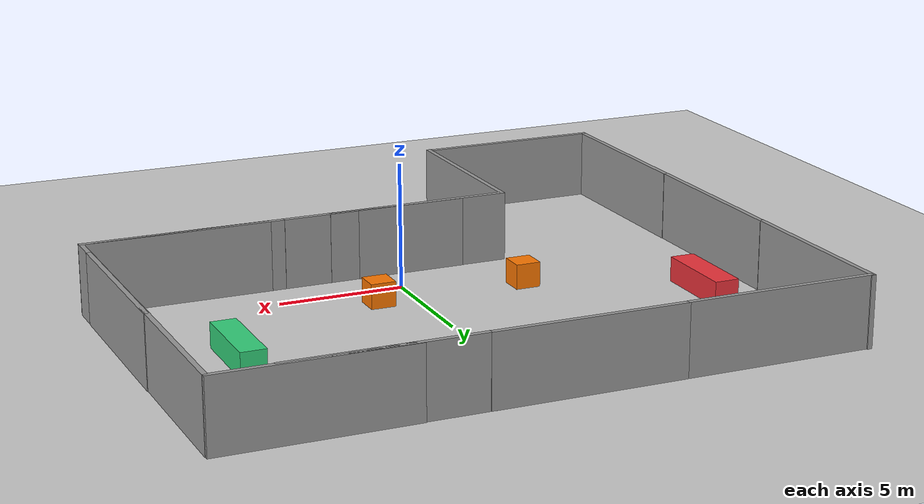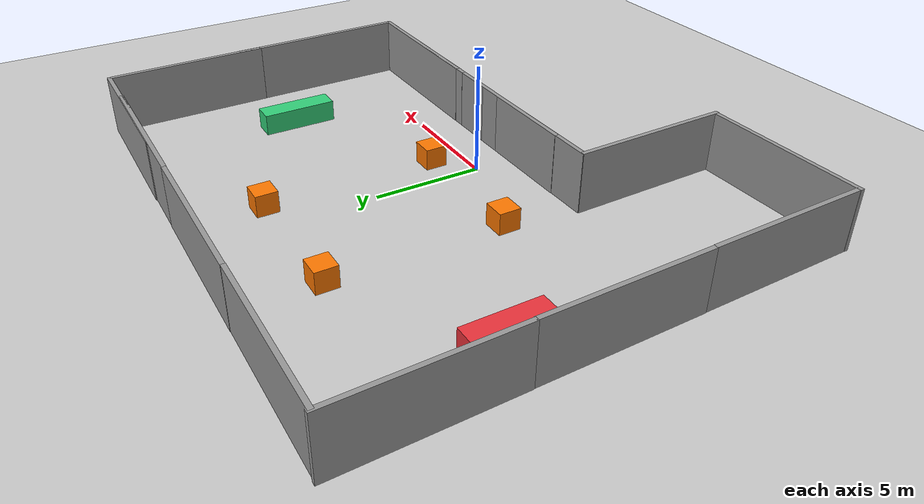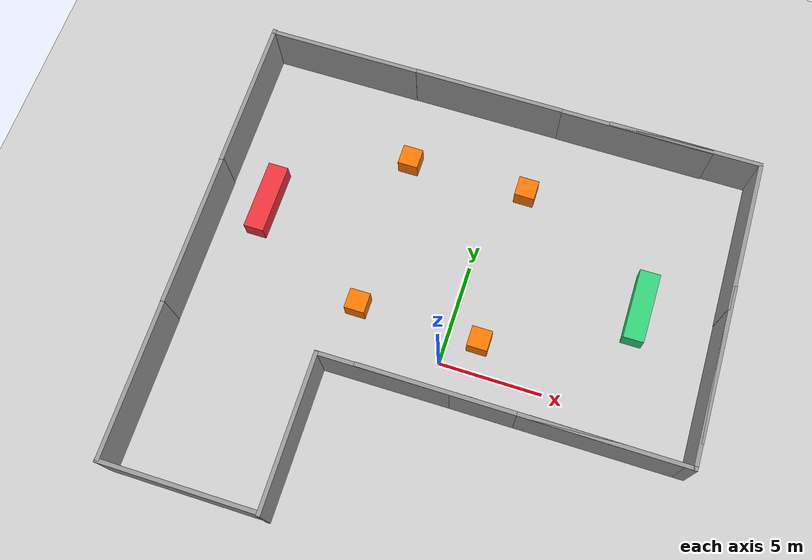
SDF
<sdf version="1.7">
 <world name="default">
  <light name="sun" type="directional">
   <pose>0 0 10 0 -0 0</pose>
   <diffuse>0.8 0.8 0.8 1</diffuse>
   <specular>0.2 0.2 0.2 1</specular>
   <attenuation>
    <range>1000</range>
    <constant>0.9</constant>
    <linear>0.01</linear>
    <quadratic>0.001</quadratic>
   </attenuation>
   <direction>-0.5 0.1 -0.9</direction>
   <spot><inner_angle>0</inner_angle><outer_angle>0</outer_angle><falloff>0</falloff></spot>
  </light>
  <model name="ground_plane">
   <static>1</static>
   <link name="link">
    <collision name="collision">
     <geometry><plane><normal>0 0 1</normal><size>100 100</size></plane></geometry>
     <surface><friction><ode><mu>100</mu><mu2>50</mu2></ode></friction></surface>
    </collision>
    <visual name="visual">
     <cast_shadows>0</cast_shadows>
     <geometry><plane><normal>0 0 1</normal><size>100 100</size></plane></geometry>
     <material>
      <script><uri>file://media/materials/scripts/gazebo.material</uri><name>Gazebo/Grey</name></script>
     </material>
    </visual>
   </link>
  </model>
  <gravity>0 0 -9.8</gravity>
  <magnetic_field>6e-06 2.3e-05 -4.2e-05</magnetic_field>
  <atmosphere type="adiabatic"/>
  <physics type="ode">
   <max_step_size>0.001</max_step_size>
   <real_time_factor>1</real_time_factor>
   <real_time_update_rate>1000</real_time_update_rate>
  </physics>
  <scene><ambient>0.4 0.4 0.4 1</ambient><background>0.7 0.7 0.7 1</background><shadows>1</shadows></scene>
  <audio><device>default</device></audio>
  <spherical_coordinates>
   <surface_model>EARTH_WGS84</surface_model>
   <latitude_deg>0</latitude_deg>
   <longitude_deg>0</longitude_deg>
   <elevation>0</elevation>
   <heading_deg>0</heading_deg>
  </spherical_coordinates>
  <model name="grey_wall">
   <static>1</static>
   <link name="link">
    <pose>0 0 1.4 0 -0 0</pose>
    <collision name="collision"><geometry><box><size>7.5 0.2 2.8</size></box></geometry></collision>
    <visual name="visual">
     <cast_shadows>0</cast_shadows>
     <geometry><box><size>7.5 0.2 2.8</size></box></geometry>
     <material>
      <script>
       <uri>model://grey_wall/materials/scripts</uri>
       <uri>model://grey_wall/materials/textures</uri>
       <name>vrc/grey_wall</name>
      </script>
     </material>
    </visual>
   </link>
   <pose>-9.03023 13.1296 0 0 -0 0</pose>
  </model>
  <model name="grey_wall_clone">
   <static>1</static>
   <link name="link">
    <pose>0 0 1.4 0 -0 0</pose>
    <collision name="collision"><geometry><box><size>7.5 0.2 2.8</size></box></geometry></collision>
    <visual name="visual">
     <cast_shadows>0</cast_shadows>
     <geometry><box><size>7.5 0.2 2.8</size></box></geometry>
     <material>
      <script>
       <uri>model://grey_wall/materials/scripts</uri>
       <uri>model://grey_wall/materials/textures</uri>
       <name>vrc/grey_wall</name>
      </script>
     </material>
    </visual>
   </link>
   <pose>-1.57984 13.1426 0 0 -0 0</pose>
  </model>
  <model name="grey_wall_clone_0">
   <static>1</static>
   <link name="link">
    <pose>0 0 1.4 0 -0 0</pose>
    <collision name="collision"><geometry><box><size>7.5 0.2 2.8</size></box></geometry></collision>
    <visual name="visual">
     <cast_shadows>0</cast_shadows>
     <geometry><box><size>7.5 0.2 2.8</size></box></geometry>
     <material>
      <script>
       <uri>model://grey_wall/materials/scripts</uri>
       <uri>model://grey_wall/materials/textures</uri>
       <name>vrc/grey_wall</name>
      </script>
     </material>
    </visual>
   </link>
   <pose>-12.721 9.52204 0 0 -0 1.58052</pose>
  </model>
  <model name="grey_wall_clone_0_clone">
   <static>1</static>
   <link name="link">
    <pose>0 0 1.4 0 -0 0</pose>
    <collision name="collision"><geometry><box><size>7.5 0.2 2.8</size></box></geometry></collision>
    <visual name="visual">
     <cast_shadows>0</cast_shadows>
     <geometry><box><size>7.5 0.2 2.8</size></box></geometry>
     <material>
      <script>
       <uri>model://grey_wall/materials/scripts</uri>
       <uri>model://grey_wall/materials/textures</uri>
       <name>vrc/grey_wall</name>
      </script>
     </material>
    </visual>
   </link>
   <pose>-12.632 2.10534 0 0 -0 1.58052</pose>
  </model>
  <model name="grey_wall_clone_1">
   <static>1</static>
   <link name="link">
    <pose>0 0 1.4 0 -0 0</pose>
    <collision name="collision"><geometry><box><size>7.5 0.2 2.8</size></box></geometry></collision>
    <visual name="visual">
     <cast_shadows>0</cast_shadows>
     <geometry><box><size>7.5 0.2 2.8</size></box></geometry>
     <material>
      <script>
       <uri>model://grey_wall/materials/scripts</uri>
       <uri>model://grey_wall/materials/textures</uri>
       <name>vrc/grey_wall</name>
      </script>
     </material>
    </visual>
   </link>
   <pose>0.390636 -1.78664 0 0 -0 0</pose>
  </model>
  <model name="grey_wall_clone_2">
   <static>1</static>
   <link name="link">
    <pose>0 0 1.4 0 -0 0</pose>
    <collision name="collision"><geometry><box><size>7.5 0.2 2.8</size></box></geometry></collision>
    <visual name="visual">
     <cast_shadows>0</cast_shadows>
     <geometry><box><size>7.5 0.2 2.8</size></box></geometry>
     <material>
      <script>
       <uri>model://grey_wall/materials/scripts</uri>
       <uri>model://grey_wall/materials/textures</uri>
       <name>vrc/grey_wall</name>
      </script>
     </material>
    </visual>
   </link>
   <pose>7.89503 -1.78631 0 0 -0 0</pose>
  </model>
  <model name="grey_wall_clone_0_clone_clone">
   <static>1</static>
   <link name="link">
    <pose>0 0 1.4 0 -0 0</pose>
    <collision name="collision"><geometry><box><size>7.5 0.2 2.8</size></box></geometry></collision>
    <visual name="visual">
     <cast_shadows>0</cast_shadows>
     <geometry><box><size>7.5 0.2 2.8</size></box></geometry>
     <material>
      <script>
       <uri>model://grey_wall/materials/scripts</uri>
       <uri>model://grey_wall/materials/textures</uri>
       <name>vrc/grey_wall</name>
      </script>
     </material>
    </visual>
   </link>
   <pose>12.0671 3.06762 0 0 -0 1.58052</pose>
  </model>
  <model name="grey_wall_clone_0_clone_clone_0">
   <static>1</static>
   <link name="link">
    <pose>0 0 1.4 0 -0 0</pose>
    <collision name="collision"><geometry><box><size>7.5 0.2 2.8</size></box></geometry></collision>
    <visual name="visual">
     <cast_shadows>0</cast_shadows>
     <geometry><box><size>7.5 0.2 2.8</size></box></geometry>
     <material>
      <script>
       <uri>model://grey_wall/materials/scripts</uri>
       <uri>model://grey_wall/materials/textures</uri>
       <name>vrc/grey_wall</name>
      </script>
     </material>
    </visual>
   </link>
   <pose>11.9807 9.37009 0 0 -0 1.58052</pose>
  </model>
  <model name="unit_box_0">
   <link name="link">
    <inertial>
     <mass>1</mass>
     <inertia>
      <ixx>0.166667</ixx>
      <ixy>0</ixy>
      <ixz>0</ixz>
      <iyy>0.166667</iyy>
      <iyz>0</iyz>
      <izz>0.166667</izz>
     </inertia>
    </inertial>
    <visual name="visual">
     <geometry><box><size>1 1 1</size></box></geometry>
     <material>
      <script><name>Gazebo/Grey</name><uri>file://media/materials/scripts/gazebo.material</uri></script>
      <shader type="pixel"><normal_map>__default__</normal_map></shader>
      <ambient>1 0.471 0 1</ambient>
      <diffuse>0.7 0.7 0.7 1</diffuse>
      <specular>0.01 0.01 0.01 1</specular>
      <emissive>0 0 0 1</emissive>
     </material>
    </visual>
    <collision name="collision">
     <geometry><box><size>1 1 1</size></box></geometry>
     <surface>
      <friction>
       <ode><mu>1</mu><mu2>1</mu2><fdir1>0 0 0</fdir1><slip1>0</slip1><slip2>0</slip2></ode>
       <torsional>
        <coefficient>1</coefficient>
        <patch_radius>0</patch_radius>
        <surface_radius>0</surface_radius>
        <use_patch_radius>1</use_patch_radius>
        <ode><slip>0</slip></ode>
       </torsional>
      </friction>
      <bounce><restitution_coefficient>0</restitution_coefficient><threshold>1e+06</threshold></bounce>
      <contact>
       <collide_without_contact>0</collide_without_contact>
       <collide_without_contact_bitmask>1</collide_without_contact_bitmask>
       <collide_bitmask>1</collide_bitmask>
       <ode>
        <soft_cfm>0</soft_cfm>
        <soft_erp>0.2</soft_erp>
        <kp>1e+13</kp>
        <kd>1</kd>
        <max_vel>0.01</max_vel>
        <min_depth>0</min_depth>
       </ode>
       <bullet>
        <split_impulse>1</split_impulse>
        <split_impulse_penetration_threshold>-0.01</split_impulse_penetration_threshold>
        <soft_cfm>0</soft_cfm>
        <soft_erp>0.2</soft_erp>
        <kp>1e+13</kp>
        <kd>1</kd>
       </bullet>
      </contact>
     </surface>
    </collision>
   </link>
   <static>0</static>
   <pose>-4.44172 9.42883 0.499995 1e-05 -0 0</pose>
  </model>
  <model name="unit_box_0_clone">
   <link name="link">
    <inertial>
     <mass>1</mass>
     <inertia>
      <ixx>0.166667</ixx>
      <ixy>0</ixy>
      <ixz>0</ixz>
      <iyy>0.166667</iyy>
      <iyz>0</iyz>
      <izz>0.166667</izz>
     </inertia>
    </inertial>
    <visual name="visual">
     <geometry><box><size>1 1 1</size></box></geometry>
     <material>
      <script><name>Gazebo/Grey</name><uri>file://media/materials/scripts/gazebo.material</uri></script>
      <shader type="pixel"><normal_map>__default__</normal_map></shader>
      <ambient>1 0.471 0 1</ambient>
      <diffuse>0.7 0.7 0.7 1</diffuse>
      <specular>0.01 0.01 0.01 1</specular>
      <emissive>0 0 0 1</emissive>
     </material>
    </visual>
    <collision name="collision">
     <geometry><box><size>1 1 1</size></box></geometry>
     <surface>
      <friction>
       <ode><mu>1</mu><mu2>1</mu2><fdir1>0 0 0</fdir1><slip1>0</slip1><slip2>0</slip2></ode>
       <torsional>
        <coefficient>1</coefficient>
        <patch_radius>0</patch_radius>
        <surface_radius>0</surface_radius>
        <use_patch_radius>1</use_patch_radius>
        <ode><slip>0</slip></ode>
       </torsional>
      </friction>
      <bounce><restitution_coefficient>0</restitution_coefficient><threshold>1e+06</threshold></bounce>
      <contact>
       <collide_without_contact>0</collide_without_contact>
       <collide_without_contact_bitmask>1</collide_without_contact_bitmask>
       <collide_bitmask>1</collide_bitmask>
       <ode>
        <soft_cfm>0</soft_cfm>
        <soft_erp>0.2</soft_erp>
        <kp>1e+13</kp>
        <kd>1</kd>
        <max_vel>0.01</max_vel>
        <min_depth>0</min_depth>
       </ode>
       <bullet>
        <split_impulse>1</split_impulse>
        <split_impulse_penetration_threshold>-0.01</split_impulse_penetration_threshold>
        <soft_cfm>0</soft_cfm>
        <soft_erp>0.2</soft_erp>
        <kp>1e+13</kp>
        <kd>1</kd>
       </bullet>
      </contact>
     </surface>
    </collision>
   </link>
   <static>0</static>
   <pose>1.53846 9.50155 0.499995 0 -1e-05 0</pose>
  </model>
  <model name="unit_box_0_clone_0">
   <link name="link">
    <inertial>
     <mass>1</mass>
     <inertia>
      <ixx>0.166667</ixx>
      <ixy>0</ixy>
      <ixz>0</ixz>
      <iyy>0.166667</iyy>
      <iyz>0</iyz>
      <izz>0.166667</izz>
     </inertia>
    </inertial>
    <visual name="visual">
     <geometry><box><size>1 1 1</size></box></geometry>
     <material>
      <script><name>Gazebo/Grey</name><uri>file://media/materials/scripts/gazebo.material</uri></script>
      <shader type="pixel"><normal_map>__default__</normal_map></shader>
      <ambient>1 0.471 0 1</ambient>
      <diffuse>0.7 0.7 0.7 1</diffuse>
      <specular>0.01 0.01 0.01 1</specular>
      <emissive>0 0 0 1</emissive>
     </material>
    </visual>
    <collision name="collision">
     <geometry><box><size>1 1 1</size></box></geometry>
     <surface>
      <friction>
       <ode><mu>1</mu><mu2>1</mu2><fdir1>0 0 0</fdir1><slip1>0</slip1><slip2>0</slip2></ode>
       <torsional>
        <coefficient>1</coefficient>
        <patch_radius>0</patch_radius>
        <surface_radius>0</surface_radius>
        <use_patch_radius>1</use_patch_radius>
        <ode><slip>0</slip></ode>
       </torsional>
      </friction>
      <bounce><restitution_coefficient>0</restitution_coefficient><threshold>1e+06</threshold></bounce>
      <contact>
       <collide_without_contact>0</collide_without_contact>
       <collide_without_contact_bitmask>1</collide_without_contact_bitmask>
       <collide_bitmask>1</collide_bitmask>
       <ode>
        <soft_cfm>0</soft_cfm>
        <soft_erp>0.2</soft_erp>
        <kp>1e+13</kp>
        <kd>1</kd>
        <max_vel>0.01</max_vel>
        <min_depth>0</min_depth>
       </ode>
       <bullet>
        <split_impulse>1</split_impulse>
        <split_impulse_penetration_threshold>-0.01</split_impulse_penetration_threshold>
        <soft_cfm>0</soft_cfm>
        <soft_erp>0.2</soft_erp>
        <kp>1e+13</kp>
        <kd>1</kd>
       </bullet>
      </contact>
     </surface>
    </collision>
   </link>
   <static>0</static>
   <pose>-4.51978 1.53973 0.499995 -1e-05 0 0</pose>
  </model>
  <model name="unit_box_0_clone_1">
   <link name="link">
    <inertial>
     <mass>1</mass>
     <inertia>
      <ixx>0.166667</ixx>
      <ixy>0</ixy>
      <ixz>0</ixz>
      <iyy>0.166667</iyy>
      <iyz>0</iyz>
      <izz>0.166667</izz>
     </inertia>
    </inertial>
    <visual name="visual">
     <geometry><box><size>1 1 1</size></box></geometry>
     <material>
      <script><name>Gazebo/Grey</name><uri>file://media/materials/scripts/gazebo.material</uri></script>
      <shader type="pixel"><normal_map>__default__</normal_map></shader>
      <ambient>1 0.471 0 1</ambient>
      <diffuse>0.7 0.7 0.7 1</diffuse>
      <specular>0.01 0.01 0.01 1</specular>
      <emissive>0 0 0 1</emissive>
     </material>
    </visual>
    <collision name="collision">
     <geometry><box><size>1 1 1</size></box></geometry>
     <surface>
      <friction>
       <ode><mu>1</mu><mu2>1</mu2><fdir1>0 0 0</fdir1><slip1>0</slip1><slip2>0</slip2></ode>
       <torsional>
        <coefficient>1</coefficient>
        <patch_radius>0</patch_radius>
        <surface_radius>0</surface_radius>
        <use_patch_radius>1</use_patch_radius>
        <ode><slip>0</slip></ode>
       </torsional>
      </friction>
      <bounce><restitution_coefficient>0</restitution_coefficient><threshold>1e+06</threshold></bounce>
      <contact>
       <collide_without_contact>0</collide_without_contact>
       <collide_without_contact_bitmask>1</collide_without_contact_bitmask>
       <collide_bitmask>1</collide_bitmask>
       <ode>
        <soft_cfm>0</soft_cfm>
        <soft_erp>0.2</soft_erp>
        <kp>1e+13</kp>
        <kd>1</kd>
        <max_vel>0.01</max_vel>
        <min_depth>0</min_depth>
       </ode>
       <bullet>
        <split_impulse>1</split_impulse>
        <split_impulse_penetration_threshold>-0.01</split_impulse_penetration_threshold>
        <soft_cfm>0</soft_cfm>
        <soft_erp>0.2</soft_erp>
        <kp>1e+13</kp>
        <kd>1</kd>
       </bullet>
      </contact>
     </surface>
    </collision>
   </link>
   <static>0</static>
   <pose>1.52442 1.48971 0.499995 0 -1e-05 0</pose>
  </model>
  <model name="loading">
   <link name="link">
    <inertial>
     <mass>1</mass>
     <inertia>
      <ixx>0.166667</ixx>
      <ixy>0</ixy>
      <ixz>0</ixz>
      <iyy>0.166667</iyy>
      <iyz>0</iyz>
      <izz>0.166667</izz>
     </inertia>
    </inertial>
    <visual name="visual">
     <geometry><box><size>1 3.48173 1</size></box></geometry>
     <material>
      <script><name>Gazebo/Grey</name><uri>file://media/materials/scripts/gazebo.material</uri></script>
      <shader type="pixel"><normal_map>__default__</normal_map></shader>
      <ambient>0.929 0.2 0.231 1</ambient>
      <diffuse>0.7 0.7 0.7 1</diffuse>
      <specular>0.01 0.01 0.01 1</specular>
      <emissive>0 0 0 1</emissive>
     </material>
    </visual>
    <collision name="collision">
     <geometry><box><size>1 3.48173 1</size></box></geometry>
     <surface>
      <friction>
       <ode><mu>1</mu><mu2>1</mu2><fdir1>0 0 0</fdir1><slip1>0</slip1><slip2>0</slip2></ode>
       <torsional>
        <coefficient>1</coefficient>
        <patch_radius>0</patch_radius>
        <surface_radius>0</surface_radius>
        <use_patch_radius>1</use_patch_radius>
        <ode><slip>0</slip></ode>
       </torsional>
      </friction>
      <bounce><restitution_coefficient>0</restitution_coefficient><threshold>1e+06</threshold></bounce>
      <contact>
       <collide_without_contact>0</collide_without_contact>
       <collide_without_contact_bitmask>1</collide_without_contact_bitmask>
       <collide_bitmask>1</collide_bitmask>
       <ode>
        <soft_cfm>0</soft_cfm>
        <soft_erp>0.2</soft_erp>
        <kp>1e+13</kp>
        <kd>1</kd>
        <max_vel>0.01</max_vel>
        <min_depth>0</min_depth>
       </ode>
       <bullet>
        <split_impulse>1</split_impulse>
        <split_impulse_penetration_threshold>-0.01</split_impulse_penetration_threshold>
        <soft_cfm>0</soft_cfm>
        <soft_erp>0.2</soft_erp>
        <kp>1e+13</kp>
        <kd>1</kd>
       </bullet>
      </contact>
     </surface>
    </collision>
   </link>
   <static>0</static>
   <pose>-10.5177 5.25775 0.499622 -0.000217 0 0</pose>
  </model>
  <model name="unloading">
   <link name="link">
    <inertial>
     <mass>1</mass>
     <inertia>
      <ixx>0.166667</ixx>
      <ixy>0</ixy>
      <ixz>0</ixz>
      <iyy>0.166667</iyy>
      <iyz>0</iyz>
      <izz>0.166667</izz>
     </inertia>
    </inertial>
    <visual name="visual">
     <geometry><box><size>1 3.48173 1</size></box></geometry>
     <material>
      <script><name>Gazebo/Grey</name><uri>file://media/materials/scripts/gazebo.material</uri></script>
      <shader type="pixel"><normal_map>__default__</normal_map></shader>
      <ambient>0.2 0.82 0.478 1</ambient>
      <diffuse>0.7 0.7 0.7 1</diffuse>
      <specular>0.01 0.01 0.01 1</specular>
      <emissive>0 0 0 1</emissive>
     </material>
    </visual>
    <collision name="collision">
     <geometry><box><size>1 3.48173 1</size></box></geometry>
     <surface>
      <friction>
       <ode><mu>1</mu><mu2>1</mu2><fdir1>0 0 0</fdir1><slip1>0</slip1><slip2>0</slip2></ode>
       <torsional>
        <coefficient>1</coefficient>
        <patch_radius>0</patch_radius>
        <surface_radius>0</surface_radius>
        <use_patch_radius>1</use_patch_radius>
        <ode><slip>0</slip></ode>
       </torsional>
      </friction>
      <bounce><restitution_coefficient>0</restitution_coefficient><threshold>1e+06</threshold></bounce>
      <contact>
       <collide_without_contact>0</collide_without_contact>
       <collide_without_contact_bitmask>1</collide_without_contact_bitmask>
       <collide_bitmask>1</collide_bitmask>
       <ode>
        <soft_cfm>0</soft_cfm>
        <soft_erp>0.2</soft_erp>
        <kp>1e+13</kp>
        <kd>1</kd>
        <max_vel>0.01</max_vel>
        <min_depth>0</min_depth>
       </ode>
       <bullet>
        <split_impulse>1</split_impulse>
        <split_impulse_penetration_threshold>-0.01</split_impulse_penetration_threshold>
        <soft_cfm>0</soft_cfm>
        <soft_erp>0.2</soft_erp>
        <kp>1e+13</kp>
        <kd>1</kd>
       </bullet>
      </contact>
     </surface>
    </collision>
   </link>
   <static>0</static>
   <pose>8.36751 5.29346 0.499998 0 3e-06 -3e-06</pose>
  </model>
  <model name="grey_wall_clone_0_clone_clone_1">
   <static>1</static>
   <link name="link">
    <pose>0 0 1.4 0 -0 0</pose>
    <collision name="collision"><geometry><box><size>7.5 0.2 2.8</size></box></geometry></collision>
    <visual name="visual">
     <cast_shadows>0</cast_shadows>
     <geometry><box><size>7.5 0.2 2.8</size></box></geometry>
     <material>
      <script>
       <uri>model://grey_wall/materials/scripts</uri>
       <uri>model://grey_wall/materials/textures</uri>
       <name>vrc/grey_wall</name>
      </script>
     </material>
    </visual>
   </link>
   <pose>-12.5436 -5.3777 0 0 -0 1.58052</pose>
  </model>
  <model name="grey_wall_clone_0_clone_clone_2">
   <static>1</static>
   <link name="link">
    <pose>0 0 1.4 0 -0 0</pose>
    <collision name="collision"><geometry><box><size>7.5 0.2 2.8</size></box></geometry></collision>
    <visual name="visual">
     <cast_shadows>0</cast_shadows>
     <geometry><box><size>7.5 0.2 2.8</size></box></geometry>
     <material>
      <script>
       <uri>model://grey_wall/materials/scripts</uri>
       <uri>model://grey_wall/materials/textures</uri>
       <name>vrc/grey_wall</name>
      </script>
     </material>
    </visual>
   </link>
   <pose>-5.10804 -5.48842 0 0 -0 1.58052</pose>
  </model>
  <model name="grey_wall_clone_0_clone_clone_3">
   <static>1</static>
   <link name="link">
    <pose>0 0 1.4 0 -0 0</pose>
    <collision name="collision"><geometry><box><size>7.5 0.2 2.8</size></box></geometry></collision>
    <visual name="visual">
     <cast_shadows>0</cast_shadows>
     <geometry><box><size>7.5 0.2 2.8</size></box></geometry>
     <material>
      <script>
       <uri>model://grey_wall/materials/scripts</uri>
       <uri>model://grey_wall/materials/textures</uri>
       <name>vrc/grey_wall</name>
      </script>
     </material>
    </visual>
   </link>
   <pose>-1.48631 -1.79734 0 0 -0 0.004166</pose>
  </model>
  <model name="grey_wall_clone_0_clone_clone_4">
   <static>1</static>
   <link name="link">
    <pose>0 0 1.4 0 -0 0</pose>
    <collision name="collision"><geometry><box><size>7.5 0.2 2.8</size></box></geometry></collision>
    <visual name="visual">
     <cast_shadows>0</cast_shadows>
     <geometry><box><size>7.5 0.2 2.8</size></box></geometry>
     <material>
      <script>
       <uri>model://grey_wall/materials/scripts</uri>
       <uri>model://grey_wall/materials/textures</uri>
       <name>vrc/grey_wall</name>
      </script>
     </material>
    </visual>
   </link>
   <pose>-8.86743 -9.10112 0 0 0 -0.000359</pose>
  </model>
  <model name="grey_wall_clone_0_clone_clone_5">
   <static>1</static>
   <link name="link">
    <pose>0 0 1.4 0 -0 0</pose>
    <collision name="collision"><geometry><box><size>7.5 0.2 2.8</size></box></geometry></collision>
    <visual name="visual">
     <cast_shadows>0</cast_shadows>
     <geometry><box><size>7.5 0.2 2.8</size></box></geometry>
     <material>
      <script>
       <uri>model://grey_wall/materials/scripts</uri>
       <uri>model://grey_wall/materials/textures</uri>
       <name>vrc/grey_wall</name>
      </script>
     </material>
    </visual>
   </link>
   <pose>5.89077 13.1268 0 0 -0 3.14078</pose>
  </model>
  <model name="grey_wall_clone_0_clone_clone_5_clone">
   <static>1</static>
   <link name="link">
    <pose>0 0 1.4 0 -0 0</pose>
    <collision name="collision"><geometry><box><size>7.5 0.2 2.8</size></box></geometry></collision>
    <visual name="visual">
     <cast_shadows>0</cast_shadows>
     <geometry><box><size>7.5 0.2 2.8</size></box></geometry>
     <material>
      <script>
       <uri>model://grey_wall/materials/scripts</uri>
       <uri>model://grey_wall/materials/textures</uri>
       <name>vrc/grey_wall</name>
      </script>
     </material>
    </visual>
   </link>
   <pose>8.26819 13.1634 0 0 -0 3.14078</pose>
  </model>
  <model name="grey_wall_clone_0_clone_clone_5_clone_0">
   <static>1</static>
   <link name="link">
    <pose>0 0 1.4 0 -0 0</pose>
    <collision name="collision"><geometry><box><size>7.5 0.2 2.8</size></box></geometry></collision>
    <visual name="visual">
     <cast_shadows>0</cast_shadows>
     <geometry><box><size>7.5 0.2 2.8</size></box></geometry>
     <material>
      <script>
       <uri>model://grey_wall/materials/scripts</uri>
       <uri>model://grey_wall/materials/textures</uri>
       <name>vrc/grey_wall</name>
      </script>
     </material>
    </visual>
   </link>
   <pose>8.45087 -1.78191 0 0 -0 3.14078</pose>
  </model>
  <model name="grey_wall_clone_0_clone_clone_clone">
   <static>1</static>
   <link name="link">
    <pose>0 0 1.4 0 -0 0</pose>
    <collision name="collision"><geometry><box><size>7.5 0.2 2.8</size></box></geometry></collision>
    <visual name="visual">
     <cast_shadows>0</cast_shadows>
     <geometry><box><size>7.5 0.2 2.8</size></box></geometry>
     <material>
      <script>
       <uri>model://grey_wall/materials/scripts</uri>
       <uri>model://grey_wall/materials/textures</uri>
       <name>vrc/grey_wall</name>
      </script>
     </material>
    </visual>
   </link>
   <pose>12.0678 1.91314 0 0 -0 1.58052</pose>
  </model>
  <model name="deletion_wall">
   <static>1</static>
   <link name="sensing_link">
    <gravity>0</gravity>
    <sensor name="object_disposal_contact" type="contact">
     <update_rate>10</update_rate>
     <contact><collision>collision</collision><topic>__default_topic__</topic></contact>
    </sensor>
    <collision name="collision"><geometry><box><size>0.1 1 1</size></box></geometry></collision>
    <visual name="visual">
     <geometry><box><size>0.1 1 1</size></box></geometry>
     <cast_shadows>0</cast_shadows>
     <transparency>100</transparency>
    </visual>
   </link>
   <plugin name="object_disposal_plugin" filename="libObjectDisposalPlugin.so">
    <contact_sensor_name>object_disposal_contact</contact_sensor_name>
    <contact_side_normal>1 0 0</contact_side_normal>
    <disposal_pose>30 30 0 0 0 0</disposal_pose>
    <update_rate>5</update_rate>
   </plugin>
   <pose>18.5106 16.0676 0 0 -0 0</pose>
  </model>
 </world>
</sdf>
